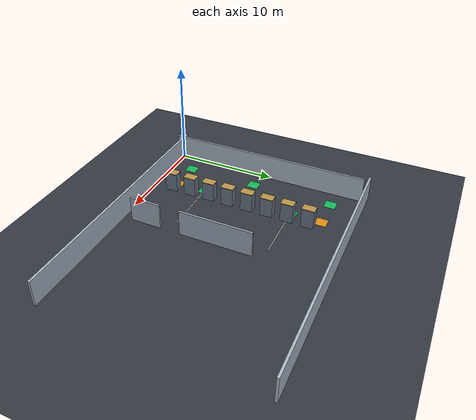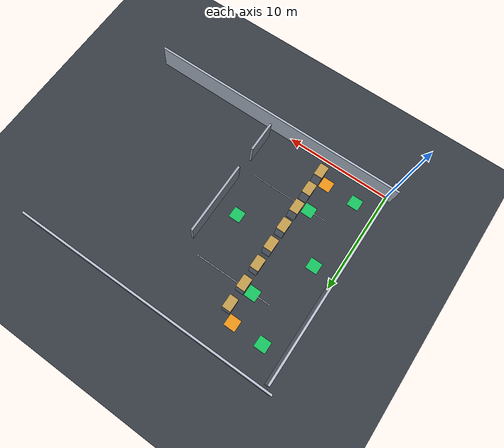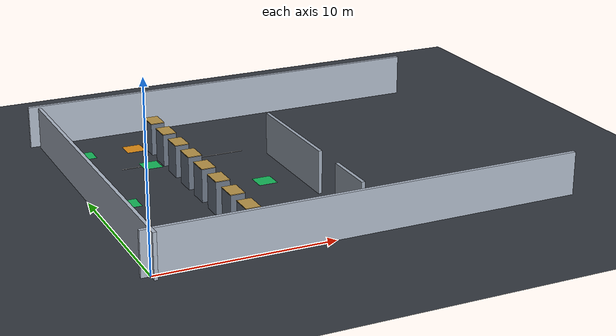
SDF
<sdf version="1.10">
 <world name="warehouse_s4_recording">
  <model name="ground_plane">
   <static>true</static>
   <link name="link">
    <collision name="collision">
     <geometry><plane><normal>0 0 1</normal><size>25 20</size></plane></geometry>
    </collision>
    <visual name="visual">
     <geometry><plane><normal>0 0 1</normal><size>25 20</size></plane></geometry>
     <material>
      <ambient>0.20 0.22 0.25 1</ambient>
      <diffuse>0.20 0.22 0.25 1</diffuse>
      <specular>0 0 0 0</specular>
     </material>
    </visual>
    <pose>12.0 9.5 0 0 0 0</pose>
   </link>
  </model>
  <model name="wall_west">
   <static>true</static>
   <pose>0.1 9.5 1.25 0 0 0</pose>
   <link name="link">
    <collision name="collision"><geometry><box><size>0.2 20.0 2.5</size></box></geometry></collision>
    <visual name="visual">
     <geometry><box><size>0.2 20.0 2.5</size></box></geometry>
     <material>
      <ambient>0.60 0.63 0.68 1</ambient>
      <diffuse>0.68 0.72 0.78 1</diffuse>
      <specular>0 0 0 0</specular>
     </material>
    </visual>
   </link>
  </model>
  <model name="wall_south">
   <static>true</static>
   <pose>12.0 19.9 1.25 0 0 0</pose>
   <link name="link">
    <collision name="collision"><geometry><box><size>25.0 0.2 2.5</size></box></geometry></collision>
    <visual name="visual">
     <geometry><box><size>25.0 0.2 2.5</size></box></geometry>
     <material>
      <ambient>0.60 0.63 0.68 1</ambient>
      <diffuse>0.68 0.72 0.78 1</diffuse>
      <specular>0 0 0 0</specular>
     </material>
    </visual>
   </link>
  </model>
  <model name="wall_north">
   <static>true</static>
   <pose>12.0 0.1 1.25 0 0 0</pose>
   <link name="link">
    <collision name="collision"><geometry><box><size>25.0 0.2 2.5</size></box></geometry></collision>
    <visual name="visual">
     <geometry><box><size>25.0 0.2 2.5</size></box></geometry>
     <material>
      <ambient>0.60 0.63 0.68 1</ambient>
      <diffuse>0.68 0.72 0.78 1</diffuse>
      <specular>0 0 0 0</specular>
     </material>
    </visual>
   </link>
  </model>
  <model name="wall_choke_010">
   <static>true</static>
   <pose>12.0 2.50 1.25 0 0 0</pose>
   <link name="link">
    <collision name="col"><geometry><box><size>0.2 3.0 2.5</size></box></geometry></collision>
    <visual name="vis">
     <geometry><box><size>0.2 3.0 2.5</size></box></geometry>
     <material>
      <ambient>0.55 0.58 0.62 1</ambient>
      <diffuse>0.62 0.66 0.72 1</diffuse>
      <specular>0 0 0 0</specular>
     </material>
    </visual>
   </link>
  </model>
  <model name="wall_choke_060">
   <static>true</static>
   <pose>12.0 9.50 1.25 0 0 0</pose>
   <link name="link">
    <collision name="col"><geometry><box><size>0.2 7.0 2.5</size></box></geometry></collision>
    <visual name="vis">
     <geometry><box><size>0.2 7.0 2.5</size></box></geometry>
     <material>
      <ambient>0.55 0.58 0.62 1</ambient>
      <diffuse>0.62 0.66 0.72 1</diffuse>
      <specular>0 0 0 0</specular>
     </material>
    </visual>
   </link>
  </model>
  <model name="ln_NW">
   <static>true</static>
   <pose>7.0 14.0 0.002 0 0 0</pose>
   <link name="link">
    <visual name="lane">
     <geometry><box><size>7.5 0.08 0.002</size></box></geometry>
     <material>
      <ambient>0.75 0.75 0.75 1</ambient>
      <diffuse>0.85 0.85 0.85 1</diffuse>
      <specular>0 0 0 0</specular>
     </material>
    </visual>
   </link>
  </model>
  <model name="ln_SW">
   <static>true</static>
   <pose>7.0 5.0 0.002 0 0 0</pose>
   <link name="link">
    <visual name="lane">
     <geometry><box><size>7.5 0.08 0.002</size></box></geometry>
     <material>
      <ambient>0.75 0.75 0.75 1</ambient>
      <diffuse>0.85 0.85 0.85 1</diffuse>
      <specular>0 0 0 0</specular>
     </material>
    </visual>
   </link>
  </model>
  <model name="pad_P1">
   <static>true</static>
   <pose>2.0 17.0 0.003 0 0 0</pose>
   <link name="link">
    <visual name="pad">
     <geometry><box><size>1.10 1.10 0.004</size></box></geometry>
     <material>
      <ambient>0.08 0.72 0.35 1</ambient>
      <diffuse>0.08 0.72 0.35 1</diffuse>
      <specular>0 0 0 0</specular>
     </material>
    </visual>
   </link>
  </model>
  <model name="pad_P2">
   <static>true</static>
   <pose>2.0 9.0 0.003 0 0 0</pose>
   <link name="link">
    <visual name="pad">
     <geometry><box><size>1.10 1.10 0.004</size></box></geometry>
     <material>
      <ambient>0.08 0.72 0.35 1</ambient>
      <diffuse>0.08 0.72 0.35 1</diffuse>
      <specular>0 0 0 0</specular>
     </material>
    </visual>
   </link>
  </model>
  <model name="pad_P3">
   <static>true</static>
   <pose>2.0 2.0 0.003 0 0 0</pose>
   <link name="link">
    <visual name="pad">
     <geometry><box><size>1.10 1.10 0.004</size></box></geometry>
     <material>
      <ambient>0.08 0.72 0.35 1</ambient>
      <diffuse>0.08 0.72 0.35 1</diffuse>
      <specular>0 0 0 0</specular>
     </material>
    </visual>
   </link>
  </model>
  <model name="pad_P4">
   <static>true</static>
   <pose>5.0 5.0 0.003 0 0 0</pose>
   <link name="link">
    <visual name="pad">
     <geometry><box><size>1.10 1.10 0.004</size></box></geometry>
     <material>
      <ambient>0.08 0.72 0.35 1</ambient>
      <diffuse>0.08 0.72 0.35 1</diffuse>
      <specular>0 0 0 0</specular>
     </material>
    </visual>
   </link>
  </model>
  <model name="pad_P5">
   <static>true</static>
   <pose>5.0 14.0 0.003 0 0 0</pose>
   <link name="link">
    <visual name="pad">
     <geometry><box><size>1.10 1.10 0.004</size></box></geometry>
     <material>
      <ambient>0.08 0.72 0.35 1</ambient>
      <diffuse>0.08 0.72 0.35 1</diffuse>
      <specular>0 0 0 0</specular>
     </material>
    </visual>
   </link>
  </model>
  <model name="pad_P6">
   <static>true</static>
   <pose>10.0 9.0 0.003 0 0 0</pose>
   <link name="link">
    <visual name="pad">
     <geometry><box><size>1.10 1.10 0.004</size></box></geometry>
     <material>
      <ambient>0.08 0.72 0.35 1</ambient>
      <diffuse>0.08 0.72 0.35 1</diffuse>
      <specular>0 0 0 0</specular>
     </material>
    </visual>
   </link>
  </model>
  <model name="pad_D5">
   <static>true</static>
   <pose>5.0 17.0 0.003 0 0 0</pose>
   <link name="link">
    <visual name="pad">
     <geometry><box><size>1.10 1.10 0.004</size></box></geometry>
     <material>
      <ambient>0.88 0.55 0.08 1</ambient>
      <diffuse>0.88 0.55 0.08 1</diffuse>
      <specular>0 0 0 0</specular>
     </material>
    </visual>
   </link>
  </model>
  <model name="pad_D6">
   <static>true</static>
   <pose>5.0 2.0 0.003 0 0 0</pose>
   <link name="link">
    <visual name="pad">
     <geometry><box><size>1.10 1.10 0.004</size></box></geometry>
     <material>
      <ambient>0.88 0.55 0.08 1</ambient>
      <diffuse>0.88 0.55 0.08 1</diffuse>
      <specular>0 0 0 0</specular>
     </material>
    </visual>
   </link>
  </model>
  <model name="shelf_row_A_01">
   <static>true</static>
   <pose>6.0 2.0 1.0 0 0 0</pose>
   <link name="link">
    <collision name="col"><geometry><box><size>0.8 1.2 2.0</size></box></geometry></collision>
    <visual name="vis_body">
     <geometry><box><size>0.80 1.20 1.90</size></box></geometry>
     <material>
      <ambient>0.35 0.38 0.42 1</ambient>
      <diffuse>0.42 0.46 0.52 1</diffuse>
      <specular>0 0 0 0</specular>
     </material>
    </visual>
    <visual name="vis_top">
     <pose>0 0 0.97 0 0 0</pose>
     <geometry><box><size>0.82 1.22 0.04</size></box></geometry>
     <material>
      <ambient>0.62 0.48 0.22 1</ambient>
      <diffuse>0.72 0.58 0.28 1</diffuse>
      <specular>0 0 0 0</specular>
     </material>
    </visual>
   </link>
  </model>
  <model name="shelf_row_A_02">
   <static>true</static>
   <pose>6.0 4.0 1.0 0 0 0</pose>
   <link name="link">
    <collision name="col"><geometry><box><size>0.8 1.2 2.0</size></box></geometry></collision>
    <visual name="vis_body">
     <geometry><box><size>0.80 1.20 1.90</size></box></geometry>
     <material>
      <ambient>0.35 0.38 0.42 1</ambient>
      <diffuse>0.42 0.46 0.52 1</diffuse>
      <specular>0 0 0 0</specular>
     </material>
    </visual>
    <visual name="vis_top">
     <pose>0 0 0.97 0 0 0</pose>
     <geometry><box><size>0.82 1.22 0.04</size></box></geometry>
     <material>
      <ambient>0.62 0.48 0.22 1</ambient>
      <diffuse>0.72 0.58 0.28 1</diffuse>
      <specular>0 0 0 0</specular>
     </material>
    </visual>
   </link>
  </model>
  <model name="shelf_row_A_03">
   <static>true</static>
   <pose>6.0 6.0 1.0 0 0 0</pose>
   <link name="link">
    <collision name="col"><geometry><box><size>0.8 1.2 2.0</size></box></geometry></collision>
    <visual name="vis_body">
     <geometry><box><size>0.80 1.20 1.90</size></box></geometry>
     <material>
      <ambient>0.35 0.38 0.42 1</ambient>
      <diffuse>0.42 0.46 0.52 1</diffuse>
      <specular>0 0 0 0</specular>
     </material>
    </visual>
    <visual name="vis_top">
     <pose>0 0 0.97 0 0 0</pose>
     <geometry><box><size>0.82 1.22 0.04</size></box></geometry>
     <material>
      <ambient>0.62 0.48 0.22 1</ambient>
      <diffuse>0.72 0.58 0.28 1</diffuse>
      <specular>0 0 0 0</specular>
     </material>
    </visual>
   </link>
  </model>
  <model name="shelf_row_A_04">
   <static>true</static>
   <pose>6.0 8.0 1.0 0 0 0</pose>
   <link name="link">
    <collision name="col"><geometry><box><size>0.8 1.2 2.0</size></box></geometry></collision>
    <visual name="vis_body">
     <geometry><box><size>0.80 1.20 1.90</size></box></geometry>
     <material>
      <ambient>0.35 0.38 0.42 1</ambient>
      <diffuse>0.42 0.46 0.52 1</diffuse>
      <specular>0 0 0 0</specular>
     </material>
    </visual>
    <visual name="vis_top">
     <pose>0 0 0.97 0 0 0</pose>
     <geometry><box><size>0.82 1.22 0.04</size></box></geometry>
     <material>
      <ambient>0.62 0.48 0.22 1</ambient>
      <diffuse>0.72 0.58 0.28 1</diffuse>
      <specular>0 0 0 0</specular>
     </material>
    </visual>
   </link>
  </model>
  <model name="shelf_row_B_01">
   <static>true</static>
   <pose>6.0 10.0 1.0 0 0 0</pose>
   <link name="link">
    <collision name="col"><geometry><box><size>0.8 1.2 2.0</size></box></geometry></collision>
    <visual name="vis_body">
     <geometry><box><size>0.80 1.20 1.90</size></box></geometry>
     <material>
      <ambient>0.35 0.38 0.42 1</ambient>
      <diffuse>0.42 0.46 0.52 1</diffuse>
      <specular>0 0 0 0</specular>
     </material>
    </visual>
    <visual name="vis_top">
     <pose>0 0 0.97 0 0 0</pose>
     <geometry><box><size>0.82 1.22 0.04</size></box></geometry>
     <material>
      <ambient>0.62 0.48 0.22 1</ambient>
      <diffuse>0.72 0.58 0.28 1</diffuse>
      <specular>0 0 0 0</specular>
     </material>
    </visual>
   </link>
  </model>
  <model name="shelf_row_B_02">
   <static>true</static>
   <pose>6.0 12.0 1.0 0 0 0</pose>
   <link name="link">
    <collision name="col"><geometry><box><size>0.8 1.2 2.0</size></box></geometry></collision>
    <visual name="vis_body">
     <geometry><box><size>0.80 1.20 1.90</size></box></geometry>
     <material>
      <ambient>0.35 0.38 0.42 1</ambient>
      <diffuse>0.42 0.46 0.52 1</diffuse>
      <specular>0 0 0 0</specular>
     </material>
    </visual>
    <visual name="vis_top">
     <pose>0 0 0.97 0 0 0</pose>
     <geometry><box><size>0.82 1.22 0.04</size></box></geometry>
     <material>
      <ambient>0.62 0.48 0.22 1</ambient>
      <diffuse>0.72 0.58 0.28 1</diffuse>
      <specular>0 0 0 0</specular>
     </material>
    </visual>
   </link>
  </model>
  <model name="shelf_row_B_03">
   <static>true</static>
   <pose>6.0 14.0 1.0 0 0 0</pose>
   <link name="link">
    <collision name="col"><geometry><box><size>0.8 1.2 2.0</size></box></geometry></collision>
    <visual name="vis_body">
     <geometry><box><size>0.80 1.20 1.90</size></box></geometry>
     <material>
      <ambient>0.35 0.38 0.42 1</ambient>
      <diffuse>0.42 0.46 0.52 1</diffuse>
      <specular>0 0 0 0</specular>
     </material>
    </visual>
    <visual name="vis_top">
     <pose>0 0 0.97 0 0 0</pose>
     <geometry><box><size>0.82 1.22 0.04</size></box></geometry>
     <material>
      <ambient>0.62 0.48 0.22 1</ambient>
      <diffuse>0.72 0.58 0.28 1</diffuse>
      <specular>0 0 0 0</specular>
     </material>
    </visual>
   </link>
  </model>
  <model name="shelf_row_B_04">
   <static>true</static>
   <pose>6.0 16.0 1.0 0 0 0</pose>
   <link name="link">
    <collision name="col"><geometry><box><size>0.8 1.2 2.0</size></box></geometry></collision>
    <visual name="vis_body">
     <geometry><box><size>0.80 1.20 1.90</size></box></geometry>
     <material>
      <ambient>0.35 0.38 0.42 1</ambient>
      <diffuse>0.42 0.46 0.52 1</diffuse>
      <specular>0 0 0 0</specular>
     </material>
    </visual>
    <visual name="vis_top">
     <pose>0 0 0.97 0 0 0</pose>
     <geometry><box><size>0.82 1.22 0.04</size></box></geometry>
     <material>
      <ambient>0.62 0.48 0.22 1</ambient>
      <diffuse>0.72 0.58 0.28 1</diffuse>
      <specular>0 0 0 0</specular>
     </material>
    </visual>
   </link>
  </model>
 </world>
</sdf>
